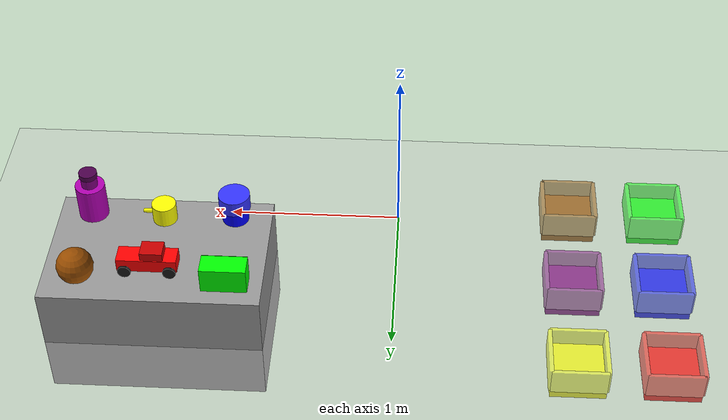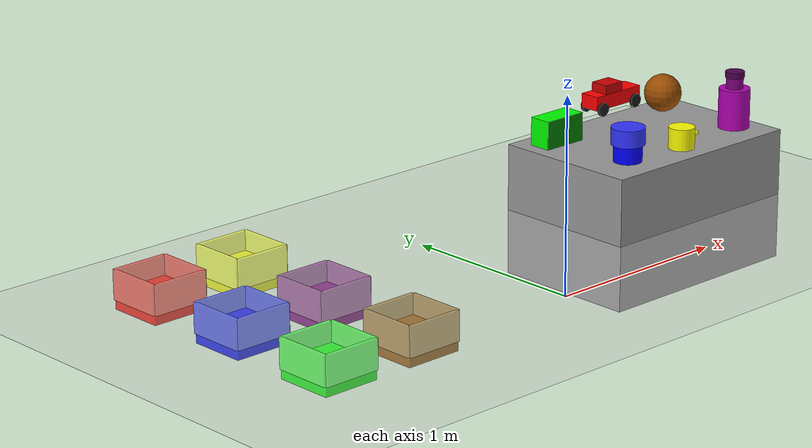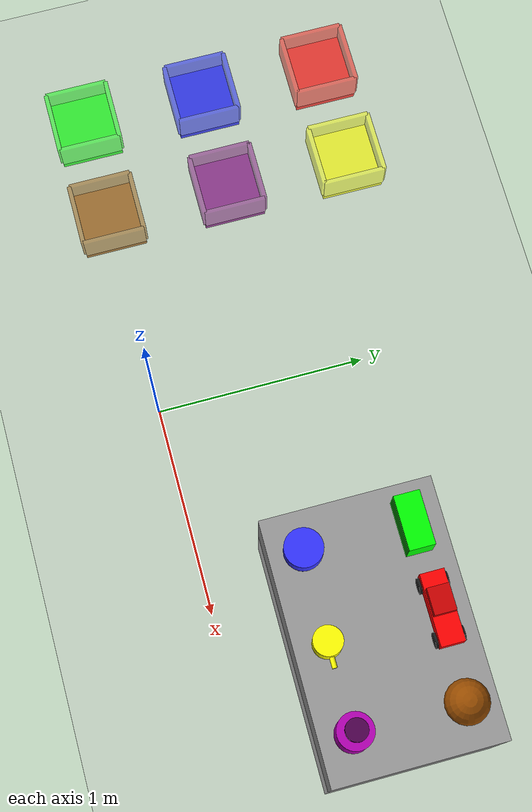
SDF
<?xml version="1.0"?>
<sdf version="1.7">
  <world name="pick_and_place_world">

    <!-- Lighting -->
    <light type="directional" name="sun">
      <cast_shadows>true</cast_shadows>
      <pose>0 0 10 0 0 0</pose>
      <diffuse>0.8 0.8 0.8 1</diffuse>
      <specular>0.2 0.2 0.2 1</specular>
      <attenuation>
        <range>1000</range>
        <constant>0.9</constant>
        <linear>0.01</linear>
        <quadratic>0.001</quadratic>
      </attenuation>
      <direction>-0.5 0.1 -0.9</direction>
    </light>

    <!-- Ground plane -->
    <model name="ground_plane">
      <static>true</static>
      <link name="link">
        <collision name="collision">
          <geometry>
            <plane>
              <normal>0 0 1</normal>
            </plane>
          </geometry>
        </collision>
        <visual name="visual">
          <geometry>
            <plane>
              <normal>0 0 1</normal>
              <size>100 100</size>
            </plane>
          </geometry>
          <material>
            <ambient>0.8 0.8 0.8 1</ambient>
            <diffuse>0.8 0.8 0.8 1</diffuse>
            <specular>0.8 0.8 0.8 1</specular>
          </material>
        </visual>
      </link>
    </model>

    <!-- Table for objects -->
    <model name="table">
      <pose>1.3 0.7 0 0 0 0</pose>
      <static>true</static>
      <link name="link">
        <collision name="collision">
          <geometry>
            <box>
              <size>1.2 0.8 0.7</size>
            </box>
          </geometry>
        </collision>
        <visual name="visual">
          <geometry>
            <box>
              <size>1.2 0.8 0.7</size>
            </box>
          </geometry>
          <material>
            <ambient>0.5 0.5 0.5 1</ambient>
            <diffuse>0.6 0.6 0.6 1</diffuse>
            <specular>0.3 0.3 0.3 1</specular>
          </material>
        </visual>
      </link>
    </model>

    <!-- Red car object -->
    <model name="red_object">
      <pose>1.30 0.95 0.48 0 0 0</pose>
      <link name="link">
        <inertial>
          <mass>0.1</mass>
          <inertia>
            <ixx>0.0005</ixx>
            <iyy>0.0005</iyy>
            <izz>0.0005</izz>
          </inertia>
        </inertial>
        <collision name="collision">
          <geometry>
            <box>
              <size>0.32 0.11 0.075</size>
            </box>
          </geometry>
        </collision>
        <!-- Car body -->
        <visual name="body">
          <pose>0 0 0.035 0 0 0</pose>
          <geometry>
            <box>
              <size>0.32 0.11 0.075</size>
            </box>
          </geometry>
          <material>
            <ambient>1 0 0 1</ambient>
            <diffuse>1 0 0 1</diffuse>
            <specular>0.8 0.8 0.8 1</specular>
          </material>
        </visual>
        <!-- Car cabin -->
        <visual name="cabin">
          <pose>-0.03 0 0.09 0 0 0</pose>
          <geometry>
            <box>
              <size>0.12 0.10 0.06</size>
            </box>
          </geometry>
          <material>
            <ambient>0.8 0 0 1</ambient>
            <diffuse>0.8 0 0 1</diffuse>
            <specular>0.8 0.8 0.8 1</specular>
          </material>
        </visual>
        <!-- Front wheels -->
        <visual name="wheel_fl">
          <pose>0.12 0.06 0 1.57 0 0</pose>
          <geometry>
            <cylinder>
              <radius>0.035</radius>
              <length>0.015</length>
            </cylinder>
          </geometry>
          <material>
            <ambient>0.1 0.1 0.1 1</ambient>
            <diffuse>0.1 0.1 0.1 1</diffuse>
          </material>
        </visual>
        <visual name="wheel_fr">
          <pose>0.12 -0.06 0 1.57 0 0</pose>
          <geometry>
            <cylinder>
              <radius>0.035</radius>
              <length>0.015</length>
            </cylinder>
          </geometry>
          <material>
            <ambient>0.1 0.1 0.1 1</ambient>
            <diffuse>0.1 0.1 0.1 1</diffuse>
          </material>
        </visual>
        <!-- Rear wheels -->
        <visual name="wheel_rl">
          <pose>-0.12 0.06 0 1.57 0 0</pose>
          <geometry>
            <cylinder>
              <radius>0.035</radius>
              <length>0.015</length>
            </cylinder>
          </geometry>
          <material>
            <ambient>0.1 0.1 0.1 1</ambient>
            <diffuse>0.1 0.1 0.1 1</diffuse>
          </material>
        </visual>
        <visual name="wheel_rr">
          <pose>-0.12 -0.06 0 1.57 0 0</pose>
          <geometry>
            <cylinder>
              <radius>0.035</radius>
              <length>0.015</length>
            </cylinder>
          </geometry>
          <material>
            <ambient>0.1 0.1 0.1 1</ambient>
            <diffuse>0.1 0.1 0.1 1</diffuse>
          </material>
        </visual>
      </link>
    </model>

    <!-- Blue vase object -->
    <model name="blue_object">
      <pose>0.90 0.45 0.46 0 0 0</pose>
      <link name="link">
        <inertial>
          <mass>0.1</mass>
          <inertia>
            <ixx>0.0005</ixx>
            <iyy>0.0005</iyy>
            <izz>0.0005</izz>
          </inertia>
        </inertial>
        <collision name="collision">
          <geometry>
            <cylinder>
              <radius>0.074</radius>
              <length>0.18</length>
            </cylinder>
          </geometry>
        </collision>
        <visual name="base">
          <pose>0 0 -0.045 0 0 0</pose>
          <geometry>
            <cylinder>
              <radius>0.074</radius>
              <length>0.09</length>
            </cylinder>
          </geometry>
          <material>
            <ambient>0 0 1 1</ambient>
            <diffuse>0 0 1 1</diffuse>
            <specular>0.5 0.5 0.5 1</specular>
          </material>
        </visual>
        <visual name="top">
          <pose>0 0 0.045 0 0 0</pose>
          <geometry>
            <cylinder>
              <radius>0.088</radius>
              <length>0.09</length>
            </cylinder>
          </geometry>
          <material>
            <ambient>0.2 0.2 1 1</ambient>
            <diffuse>0.2 0.2 1 1</diffuse>
            <specular>0.5 0.5 0.5 1</specular>
          </material>
        </visual>
      </link>
    </model>

    <!-- Green book object -->
    <model name="green_object">
      <pose>0.90 0.95 0.425 0 0 0</pose>
      <link name="link">
        <inertial>
          <mass>0.1</mass>
          <inertia>
            <ixx>0.0005</ixx>
            <iyy>0.0005</iyy>
            <izz>0.0005</izz>
          </inertia>
        </inertial>
        <collision name="collision">
          <geometry>
            <box>
              <size>0.25 0.12 0.15</size>
            </box>
          </geometry>
        </collision>
        <visual name="cover">
          <geometry>
            <box>
              <size>0.25 0.12 0.15</size>
            </box>
          </geometry>
          <material>
            <ambient>0 1 0 1</ambient>
            <diffuse>0 1 0 1</diffuse>
            <specular>0.5 0.5 0.5 1</specular>
          </material>
        </visual>
        <visual name="spine">
          <pose>0 -0.061 0 0 0 0</pose>
          <geometry>
            <box>
              <size>0.25 0.002 0.15</size>
            </box>
          </geometry>
          <material>
            <ambient>0 0.5 0 1</ambient>
            <diffuse>0 0.5 0 1</diffuse>
            <specular>0.3 0.3 0.3 1</specular>
          </material>
        </visual>
      </link>
    </model>

    <!-- Yellow mug object -->
    <model name="yellow_object">
      <pose>1.30 0.45 0.4065 0 0 0</pose>
      <link name="link">
        <inertial>
          <mass>0.1</mass>
          <inertia>
            <ixx>0.0005</ixx>
            <iyy>0.0005</iyy>
            <izz>0.0005</izz>
          </inertia>
        </inertial>
        <collision name="collision">
          <geometry>
            <cylinder>
              <radius>0.068</radius>
              <length>0.113</length>
            </cylinder>
          </geometry>
        </collision>
        <visual name="cup_body">
          <geometry>
            <cylinder>
              <radius>0.068</radius>
              <length>0.113</length>
            </cylinder>
          </geometry>
          <material>
            <ambient>1 1 0 1</ambient>
            <diffuse>1 1 0 1</diffuse>
            <specular>0.5 0.5 0.5 1</specular>
          </material>
        </visual>
        <visual name="handle">
          <pose>0.078 0 0 0 1.57 0</pose>
          <geometry>
            <cylinder>
              <radius>0.012</radius>
              <length>0.075</length>
            </cylinder>
          </geometry>
          <material>
            <ambient>1 1 0 1</ambient>
            <diffuse>1 1 0 1</diffuse>
            <specular>0.5 0.5 0.5 1</specular>
          </material>
        </visual>
      </link>
    </model>

    <!-- Brown ball object -->
    <model name="brown_object">
      <pose>1.70 0.95 0.45 0 0 0</pose>
      <link name="link">
        <inertial>
          <mass>0.1</mass>
          <inertia>
            <ixx>0.0001</ixx>
            <iyy>0.0001</iyy>
            <izz>0.0001</izz>
          </inertia>
        </inertial>
        <collision name="collision">
          <geometry>
            <sphere>
              <radius>0.10</radius>
            </sphere>
          </geometry>
        </collision>
        <visual name="visual">
          <geometry>
            <sphere>
              <radius>0.10</radius>
            </sphere>
          </geometry>
          <material>
            <ambient>0.6 0.3 0 1</ambient>
            <diffuse>0.6 0.3 0 1</diffuse>
            <specular>0.5 0.5 0.5 1</specular>
          </material>
        </visual>
      </link>
    </model>

    <!-- Purple bottle object -->
    <model name="purple_object">
      <pose>1.70 0.45 0.51 0 0 0</pose>
      <link name="link">
        <inertial>
          <mass>0.1</mass>
          <inertia>
            <ixx>0.0005</ixx>
            <iyy>0.0005</iyy>
            <izz>0.0005</izz>
          </inertia>
        </inertial>
        <collision name="collision">
          <geometry>
            <cylinder>
              <radius>0.075</radius>
              <length>0.27</length>
            </cylinder>
          </geometry>
        </collision>
        <visual name="bottle_body">
          <pose>0 0 -0.03 0 0 0</pose>
          <geometry>
            <cylinder>
              <radius>0.082</radius>
              <length>0.21</length>
            </cylinder>
          </geometry>
          <material>
            <ambient>0.7 0 0.7 1</ambient>
            <diffuse>0.7 0 0.7 1</diffuse>
            <specular>0.5 0.5 0.5 1</specular>
          </material>
        </visual>
        <visual name="bottle_neck">
          <pose>0 0 0.105 0 0 0</pose>
          <geometry>
            <cylinder>
              <radius>0.045</radius>
              <length>0.06</length>
            </cylinder>
          </geometry>
          <material>
            <ambient>0.5 0 0.5 1</ambient>
            <diffuse>0.5 0 0.5 1</diffuse>
            <specular>0.5 0.5 0.5 1</specular>
          </material>
        </visual>
        <visual name="bottle_cap">
          <pose>0 0 0.150 0 0 0</pose>
          <geometry>
            <cylinder>
              <radius>0.050</radius>
              <length>0.030</length>
            </cylinder>
          </geometry>
          <material>
            <ambient>0.3 0 0.3 1</ambient>
            <diffuse>0.3 0 0.3 1</diffuse>
            <specular>0.5 0.5 0.5 1</specular>
          </material>
        </visual>
      </link>
    </model>

    <!-- Red drop zone -->
    <model name="red_drop_zone">
      <pose>-1.5 1.2 0.05 0 0 0</pose>
      <static>true</static>
      <link name="link">
        <collision name="collision">
          <geometry>
            <box>
              <size>0.3 0.3 0.1</size>
            </box>
          </geometry>
        </collision>
        <visual name="visual">
          <geometry>
            <box>
              <size>0.3 0.3 0.1</size>
            </box>
          </geometry>
          <material>
            <ambient>1 0 0 0.7</ambient>
            <diffuse>1 0 0 0.7</diffuse>
            <specular>0.5 0 0 1</specular>
          </material>
        </visual>
      </link>
    </model>

    <!-- Red drop zone walls -->
    <model name="red_wall_front">
      <pose>-1.35 1.2 0.125 0 0 0</pose>
      <static>true</static>
      <link name="link">
        <collision name="collision">
          <geometry>
            <box>
              <size>0.02 0.3 0.15</size>
            </box>
          </geometry>
        </collision>
        <visual name="visual">
          <geometry>
            <box>
              <size>0.02 0.3 0.15</size>
            </box>
          </geometry>
          <material>
            <ambient>1 0 0 0.5</ambient>
            <diffuse>1 0 0 0.5</diffuse>
          </material>
        </visual>
      </link>
    </model>

    <model name="red_wall_back">
      <pose>-1.65 1.2 0.125 0 0 0</pose>
      <static>true</static>
      <link name="link">
        <collision name="collision">
          <geometry>
            <box>
              <size>0.02 0.3 0.15</size>
            </box>
          </geometry>
        </collision>
        <visual name="visual">
          <geometry>
            <box>
              <size>0.02 0.3 0.15</size>
            </box>
          </geometry>
          <material>
            <ambient>1 0 0 0.5</ambient>
            <diffuse>1 0 0 0.5</diffuse>
          </material>
        </visual>
      </link>
    </model>

    <model name="red_wall_left">
      <pose>-1.5 1.05 0.125 0 0 0</pose>
      <static>true</static>
      <link name="link">
        <collision name="collision">
          <geometry>
            <box>
              <size>0.3 0.02 0.15</size>
            </box>
          </geometry>
        </collision>
        <visual name="visual">
          <geometry>
            <box>
              <size>0.3 0.02 0.15</size>
            </box>
          </geometry>
          <material>
            <ambient>1 0 0 0.5</ambient>
            <diffuse>1 0 0 0.5</diffuse>
          </material>
        </visual>
      </link>
    </model>

    <model name="red_wall_right">
      <pose>-1.5 1.35 0.125 0 0 0</pose>
      <static>true</static>
      <link name="link">
        <collision name="collision">
          <geometry>
            <box>
              <size>0.3 0.02 0.15</size>
            </box>
          </geometry>
        </collision>
        <visual name="visual">
          <geometry>
            <box>
              <size>0.3 0.02 0.15</size>
            </box>
          </geometry>
          <material>
            <ambient>1 0 0 0.5</ambient>
            <diffuse>1 0 0 0.5</diffuse>
          </material>
        </visual>
      </link>
    </model>

    <!-- Blue drop zone -->
    <model name="blue_drop_zone">
      <pose>-1.5 0.6 0.05 0 0 0</pose>
      <static>true</static>
      <link name="link">
        <collision name="collision">
          <geometry>
            <box>
              <size>0.3 0.3 0.1</size>
            </box>
          </geometry>
        </collision>
        <visual name="visual">
          <geometry>
            <box>
              <size>0.3 0.3 0.1</size>
            </box>
          </geometry>
          <material>
            <ambient>0 0 1 0.7</ambient>
            <diffuse>0 0 1 0.7</diffuse>
            <specular>0 0 0.5 1</specular>
          </material>
        </visual>
      </link>
    </model>

    <!-- Blue drop zone walls -->
    <model name="blue_wall_front">
      <pose>-1.35 0.6 0.125 0 0 0</pose>
      <static>true</static>
      <link name="link">
        <collision name="collision">
          <geometry>
            <box>
              <size>0.02 0.3 0.15</size>
            </box>
          </geometry>
        </collision>
        <visual name="visual">
          <geometry>
            <box>
              <size>0.02 0.3 0.15</size>
            </box>
          </geometry>
          <material>
            <ambient>0 0 1 0.5</ambient>
            <diffuse>0 0 1 0.5</diffuse>
          </material>
        </visual>
      </link>
    </model>

    <model name="blue_wall_back">
      <pose>-1.65 0.6 0.125 0 0 0</pose>
      <static>true</static>
      <link name="link">
        <collision name="collision">
          <geometry>
            <box>
              <size>0.02 0.3 0.15</size>
            </box>
          </geometry>
        </collision>
        <visual name="visual">
          <geometry>
            <box>
              <size>0.02 0.3 0.15</size>
            </box>
          </geometry>
          <material>
            <ambient>0 0 1 0.5</ambient>
            <diffuse>0 0 1 0.5</diffuse>
          </material>
        </visual>
      </link>
    </model>

    <model name="blue_wall_left">
      <pose>-1.5 0.45 0.125 0 0 0</pose>
      <static>true</static>
      <link name="link">
        <collision name="collision">
          <geometry>
            <box>
              <size>0.3 0.02 0.15</size>
            </box>
          </geometry>
        </collision>
        <visual name="visual">
          <geometry>
            <box>
              <size>0.3 0.02 0.15</size>
            </box>
          </geometry>
          <material>
            <ambient>0 0 1 0.5</ambient>
            <diffuse>0 0 1 0.5</diffuse>
          </material>
        </visual>
      </link>
    </model>

    <model name="blue_wall_right">
      <pose>-1.5 0.75 0.125 0 0 0</pose>
      <static>true</static>
      <link name="link">
        <collision name="collision">
          <geometry>
            <box>
              <size>0.3 0.02 0.15</size>
            </box>
          </geometry>
        </collision>
        <visual name="visual">
          <geometry>
            <box>
              <size>0.3 0.02 0.15</size>
            </box>
          </geometry>
          <material>
            <ambient>0 0 1 0.5</ambient>
            <diffuse>0 0 1 0.5</diffuse>
          </material>
        </visual>
      </link>
    </model>

    <!-- Green drop zone -->
    <model name="green_drop_zone">
      <pose>-1.5 0.0 0.05 0 0 0</pose>
      <static>true</static>
      <link name="link">
        <collision name="collision">
          <geometry>
            <box>
              <size>0.3 0.3 0.1</size>
            </box>
          </geometry>
        </collision>
        <visual name="visual">
          <geometry>
            <box>
              <size>0.3 0.3 0.1</size>
            </box>
          </geometry>
          <material>
            <ambient>0 1 0 0.7</ambient>
            <diffuse>0 1 0 0.7</diffuse>
            <specular>0 0.5 0 1</specular>
          </material>
        </visual>
      </link>
    </model>

    <!-- Green drop zone walls -->
    <model name="green_wall_front">
      <pose>-1.35 0.0 0.125 0 0 0</pose>
      <static>true</static>
      <link name="link">
        <collision name="collision">
          <geometry>
            <box>
              <size>0.02 0.3 0.15</size>
            </box>
          </geometry>
        </collision>
        <visual name="visual">
          <geometry>
            <box>
              <size>0.02 0.3 0.15</size>
            </box>
          </geometry>
          <material>
            <ambient>0 1 0 0.5</ambient>
            <diffuse>0 1 0 0.5</diffuse>
          </material>
        </visual>
      </link>
    </model>

    <model name="green_wall_back">
      <pose>-1.65 0.0 0.125 0 0 0</pose>
      <static>true</static>
      <link name="link">
        <collision name="collision">
          <geometry>
            <box>
              <size>0.02 0.3 0.15</size>
            </box>
          </geometry>
        </collision>
        <visual name="visual">
          <geometry>
            <box>
              <size>0.02 0.3 0.15</size>
            </box>
          </geometry>
          <material>
            <ambient>0 1 0 0.5</ambient>
            <diffuse>0 1 0 0.5</diffuse>
          </material>
        </visual>
      </link>
    </model>

    <model name="green_wall_left">
      <pose>-1.5 -0.15 0.125 0 0 0</pose>
      <static>true</static>
      <link name="link">
        <collision name="collision">
          <geometry>
            <box>
              <size>0.3 0.02 0.15</size>
            </box>
          </geometry>
        </collision>
        <visual name="visual">
          <geometry>
            <box>
              <size>0.3 0.02 0.15</size>
            </box>
          </geometry>
          <material>
            <ambient>0 1 0 0.5</ambient>
            <diffuse>0 1 0 0.5</diffuse>
          </material>
        </visual>
      </link>
    </model>

    <model name="green_wall_right">
      <pose>-1.5 0.15 0.125 0 0 0</pose>
      <static>true</static>
      <link name="link">
        <collision name="collision">
          <geometry>
            <box>
              <size>0.3 0.02 0.15</size>
            </box>
          </geometry>
        </collision>
        <visual name="visual">
          <geometry>
            <box>
              <size>0.3 0.02 0.15</size>
            </box>
          </geometry>
          <material>
            <ambient>0 1 0 0.5</ambient>
            <diffuse>0 1 0 0.5</diffuse>
          </material>
        </visual>
      </link>
    </model>

    <!-- Yellow drop zone -->
    <model name="yellow_drop_zone">
      <pose>-1.0 1.2 0.05 0 0 0</pose>
      <static>true</static>
      <link name="link">
        <collision name="collision">
          <geometry>
            <box>
              <size>0.3 0.3 0.1</size>
            </box>
          </geometry>
        </collision>
        <visual name="visual">
          <geometry>
            <box>
              <size>0.3 0.3 0.1</size>
            </box>
          </geometry>
          <material>
            <ambient>1 1 0 0.7</ambient>
            <diffuse>1 1 0 0.7</diffuse>
            <specular>0.5 0.5 0 1</specular>
          </material>
        </visual>
      </link>
    </model>

    <!-- Yellow drop zone walls -->
    <model name="yellow_wall_front">
      <pose>-0.85 1.2 0.125 0 0 0</pose>
      <static>true</static>
      <link name="link">
        <collision name="collision">
          <geometry>
            <box>
              <size>0.02 0.3 0.15</size>
            </box>
          </geometry>
        </collision>
        <visual name="visual">
          <geometry>
            <box>
              <size>0.02 0.3 0.15</size>
            </box>
          </geometry>
          <material>
            <ambient>1 1 0 0.5</ambient>
            <diffuse>1 1 0 0.5</diffuse>
          </material>
        </visual>
      </link>
    </model>

    <model name="yellow_wall_back">
      <pose>-1.15 1.2 0.125 0 0 0</pose>
      <static>true</static>
      <link name="link">
        <collision name="collision">
          <geometry>
            <box>
              <size>0.02 0.3 0.15</size>
            </box>
          </geometry>
        </collision>
        <visual name="visual">
          <geometry>
            <box>
              <size>0.02 0.3 0.15</size>
            </box>
          </geometry>
          <material>
            <ambient>1 1 0 0.5</ambient>
            <diffuse>1 1 0 0.5</diffuse>
          </material>
        </visual>
      </link>
    </model>

    <model name="yellow_wall_left">
      <pose>-1.0 1.05 0.125 0 0 0</pose>
      <static>true</static>
      <link name="link">
        <collision name="collision">
          <geometry>
            <box>
              <size>0.3 0.02 0.15</size>
            </box>
          </geometry>
        </collision>
        <visual name="visual">
          <geometry>
            <box>
              <size>0.3 0.02 0.15</size>
            </box>
          </geometry>
          <material>
            <ambient>1 1 0 0.5</ambient>
            <diffuse>1 1 0 0.5</diffuse>
          </material>
        </visual>
      </link>
    </model>

    <model name="yellow_wall_right">
      <pose>-1.0 1.35 0.125 0 0 0</pose>
      <static>true</static>
      <link name="link">
        <collision name="collision">
          <geometry>
            <box>
              <size>0.3 0.02 0.15</size>
            </box>
          </geometry>
        </collision>
        <visual name="visual">
          <geometry>
            <box>
              <size>0.3 0.02 0.15</size>
            </box>
          </geometry>
          <material>
            <ambient>1 1 0 0.5</ambient>
            <diffuse>1 1 0 0.5</diffuse>
          </material>
        </visual>
      </link>
    </model>

    <!-- Purple drop zone -->
    <model name="purple_drop_zone">
      <pose>-1.0 0.6 0.05 0 0 0</pose>
      <static>true</static>
      <link name="link">
        <collision name="collision">
          <geometry>
            <box>
              <size>0.3 0.3 0.1</size>
            </box>
          </geometry>
        </collision>
        <visual name="visual">
          <geometry>
            <box>
              <size>0.3 0.3 0.1</size>
            </box>
          </geometry>
          <material>
            <ambient>0.5 0 0.5 0.7</ambient>
            <diffuse>0.5 0 0.5 0.7</diffuse>
            <specular>0.3 0 0.3 1</specular>
          </material>
        </visual>
      </link>
    </model>

    <!-- Purple drop zone walls -->
    <model name="purple_wall_front">
      <pose>-0.85 0.6 0.125 0 0 0</pose>
      <static>true</static>
      <link name="link">
        <collision name="collision">
          <geometry>
            <box>
              <size>0.02 0.3 0.15</size>
            </box>
          </geometry>
        </collision>
        <visual name="visual">
          <geometry>
            <box>
              <size>0.02 0.3 0.15</size>
            </box>
          </geometry>
          <material>
            <ambient>0.5 0 0.5 0.5</ambient>
            <diffuse>0.5 0 0.5 0.5</diffuse>
          </material>
        </visual>
      </link>
    </model>

    <model name="purple_wall_back">
      <pose>-1.15 0.6 0.125 0 0 0</pose>
      <static>true</static>
      <link name="link">
        <collision name="collision">
          <geometry>
            <box>
              <size>0.02 0.3 0.15</size>
            </box>
          </geometry>
        </collision>
        <visual name="visual">
          <geometry>
            <box>
              <size>0.02 0.3 0.15</size>
            </box>
          </geometry>
          <material>
            <ambient>0.5 0 0.5 0.5</ambient>
            <diffuse>0.5 0 0.5 0.5</diffuse>
          </material>
        </visual>
      </link>
    </model>

    <model name="purple_wall_left">
      <pose>-1.0 0.45 0.125 0 0 0</pose>
      <static>true</static>
      <link name="link">
        <collision name="collision">
          <geometry>
            <box>
              <size>0.3 0.02 0.15</size>
            </box>
          </geometry>
        </collision>
        <visual name="visual">
          <geometry>
            <box>
              <size>0.3 0.02 0.15</size>
            </box>
          </geometry>
          <material>
            <ambient>0.5 0 0.5 0.5</ambient>
            <diffuse>0.5 0 0.5 0.5</diffuse>
          </material>
        </visual>
      </link>
    </model>

    <model name="purple_wall_right">
      <pose>-1.0 0.75 0.125 0 0 0</pose>
      <static>true</static>
      <link name="link">
        <collision name="collision">
          <geometry>
            <box>
              <size>0.3 0.02 0.15</size>
            </box>
          </geometry>
        </collision>
        <visual name="visual">
          <geometry>
            <box>
              <size>0.3 0.02 0.15</size>
            </box>
          </geometry>
          <material>
            <ambient>0.5 0 0.5 0.5</ambient>
            <diffuse>0.5 0 0.5 0.5</diffuse>
          </material>
        </visual>
      </link>
    </model>

    <!-- Brown drop zone -->
    <model name="brown_drop_zone">
      <pose>-1.0 0.0 0.05 0 0 0</pose>
      <static>true</static>
      <link name="link">
        <collision name="collision">
          <geometry>
            <box>
              <size>0.3 0.3 0.1</size>
            </box>
          </geometry>
        </collision>
        <visual name="visual">
          <geometry>
            <box>
              <size>0.3 0.3 0.1</size>
            </box>
          </geometry>
          <material>
            <ambient>0.6 0.3 0 0.7</ambient>
            <diffuse>0.6 0.3 0 0.7</diffuse>
            <specular>0.3 0.15 0 1</specular>
          </material>
        </visual>
      </link>
    </model>

    <!-- Brown drop zone walls -->
    <model name="brown_wall_front">
      <pose>-0.85 0.0 0.125 0 0 0</pose>
      <static>true</static>
      <link name="link">
        <collision name="collision">
          <geometry>
            <box>
              <size>0.02 0.3 0.15</size>
            </box>
          </geometry>
        </collision>
        <visual name="visual">
          <geometry>
            <box>
              <size>0.02 0.3 0.15</size>
            </box>
          </geometry>
          <material>
            <ambient>0.6 0.3 0 0.5</ambient>
            <diffuse>0.6 0.3 0 0.5</diffuse>
          </material>
        </visual>
      </link>
    </model>

    <model name="brown_wall_back">
      <pose>-1.15 0.0 0.125 0 0 0</pose>
      <static>true</static>
      <link name="link">
        <collision name="collision">
          <geometry>
            <box>
              <size>0.02 0.3 0.15</size>
            </box>
          </geometry>
        </collision>
        <visual name="visual">
          <geometry>
            <box>
              <size>0.02 0.3 0.15</size>
            </box>
          </geometry>
          <material>
            <ambient>0.6 0.3 0 0.5</ambient>
            <diffuse>0.6 0.3 0 0.5</diffuse>
          </material>
        </visual>
      </link>
    </model>

    <model name="brown_wall_left">
      <pose>-1.0 -0.15 0.125 0 0 0</pose>
      <static>true</static>
      <link name="link">
        <collision name="collision">
          <geometry>
            <box>
              <size>0.3 0.02 0.15</size>
            </box>
          </geometry>
        </collision>
        <visual name="visual">
          <geometry>
            <box>
              <size>0.3 0.02 0.15</size>
            </box>
          </geometry>
          <material>
            <ambient>0.6 0.3 0 0.5</ambient>
            <diffuse>0.6 0.3 0 0.5</diffuse>
          </material>
        </visual>
      </link>
    </model>

    <model name="brown_wall_right">
      <pose>-1.0 0.15 0.125 0 0 0</pose>
      <static>true</static>
      <link name="link">
        <collision name="collision">
          <geometry>
            <box>
              <size>0.3 0.02 0.15</size>
            </box>
          </geometry>
        </collision>
        <visual name="visual">
          <geometry>
            <box>
              <size>0.3 0.02 0.15</size>
            </box>
          </geometry>
          <material>
            <ambient>0.6 0.3 0 0.5</ambient>
            <diffuse>0.6 0.3 0 0.5</diffuse>
          </material>
        </visual>
      </link>
    </model>

  </world>
</sdf>
